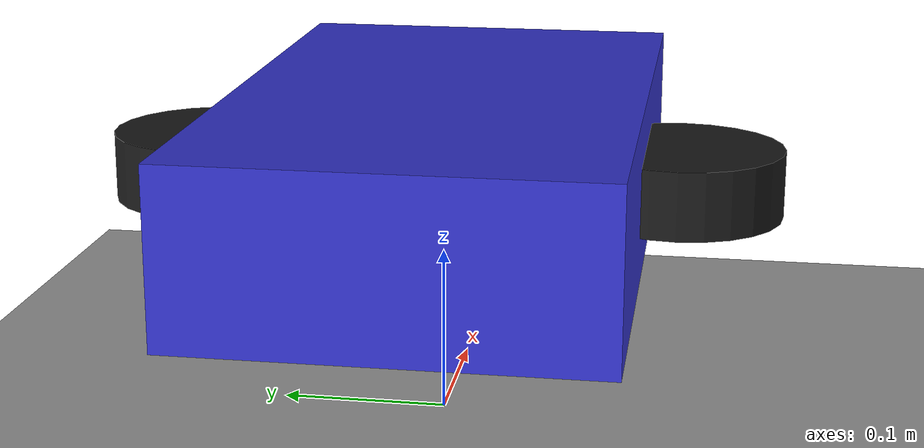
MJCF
<mujoco model="wheeled_tracking">
  <compiler angle="degree" coordinate="local"/>
  <option timestep="0.01" gravity="0 0 -9.81"/>

  <default>
    <geom friction="1.0 0.1 0.1" density="300" rgba="0.6 0.6 0.6 1"/>
    <joint damping="0.1"/>
  </default>

  <asset>
    <texture name="ground" type="2d" builtin="checker" width="512" height="512" rgb1="0.2 0.2 0.2" rgb2="0.3 0.3 0.3"/>
    <material name="ground_mat" texture="ground" texrepeat="8 8" reflectance="0.1"/>
  </asset>

  <worldbody>
    <geom name="ground" type="plane" pos="0 0 0" size="5 5 0.1" material="ground_mat"/>

    <camera name="front" mode="fixed" pos="0 -2 1" xyaxes="1 0 0 0 1 0"/>

    <body name="base" pos="0 0 0.15">
      <freejoint/>
      <geom name="chassis" type="box" size="0.2 0.12 0.05" rgba="0.2 0.2 0.8 1"/>

      <body name="wheel_left" pos="0 -0.14 0">
        <joint name="left_wheel_joint" type="hinge" axis="0 1 0"/>
        <geom name="wheel_left_geom" type="cylinder" size="0.06 0.02" rgba="0.1 0.1 0.1 1"/>
      </body>

      <body name="wheel_right" pos="0 0.14 0">
        <joint name="right_wheel_joint" type="hinge" axis="0 1 0"/>
        <geom name="wheel_right_geom" type="cylinder" size="0.06 0.02" rgba="0.1 0.1 0.1 1"/>
      </body>
    </body>
  </worldbody>

  <actuator>
    <motor name="left_wheel" joint="left_wheel_joint" ctrlrange="-1 1" gear="5"/>
    <motor name="right_wheel" joint="right_wheel_joint" ctrlrange="-1 1" gear="5"/>
  </actuator>
</mujoco>
